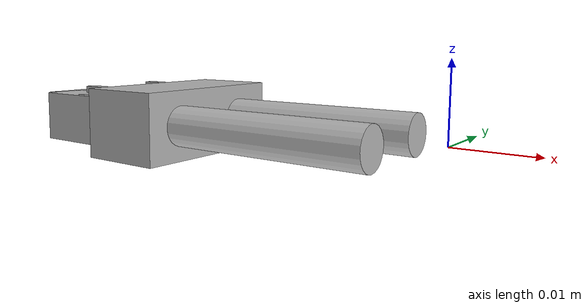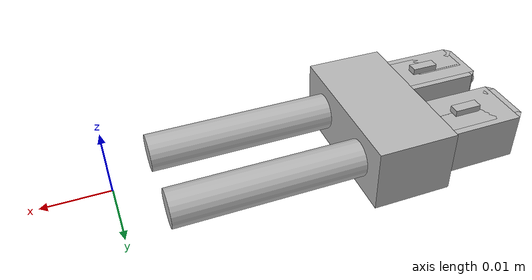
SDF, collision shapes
<?xml version="1.0" ?>
<sdf version="1.9">
  <model name="sfp_sc_cable_reversed_tip_only">
    <static>false</static>
    <self_collide>false</self_collide>

    <link name="cable_connection_0">
      <pose>2.363388573733971e-08 8.9916731726980004e-08 -1.809723890744408e-07 -1.963900419222713 -0.50606074442996496 0.41718859268790637</pose>
      <inertial>
        <mass>0.001</mass>
        <inertia>
          <ixx>1e-6</ixx>
          <iyy>1e-6</iyy>
          <izz>1e-6</izz>
        </inertia>
      </inertial>
    </link>

    <link name="cable_connection_1">
      <pose>0.030075539004938534 -0.4988568760994751 -0.15479201364706729 -2.1585642001188612 -0.87514742422539726 2.3400596200714205</pose>
      <inertial>
        <mass>0.001</mass>
        <inertia>
          <ixx>1e-6</ixx>
          <iyy>1e-6</iyy>
          <izz>1e-6</izz>
        </inertia>
      </inertial>
    </link>

    <include merge="true">
      <uri>model://SC Plug</uri>
      <pose relative_to="cable_connection_0">-0.052 0 0 0 0 3.14159</pose>
    </include>

    <joint name="plug_0_joint" type="fixed">
      <parent>cable_connection_0</parent>
      <child>sc_plug_link</child>
    </joint>
  </model>
</sdf>

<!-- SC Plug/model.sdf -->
<sdf version="1.9">
  <model name="SC Plug">
    <link name="sc_plug_link">
      <inertial auto="true">
        <mass>0.04</mass>
      </inertial>
      <visual name="sc_plug_visual">
        <geometry>
          <mesh>
            <uri>sc_plug_visual.glb</uri>
          </mesh>
        </geometry>
      </visual>
      <collision name="housing blue_predeterminado005_collider_box">
        <pose>0.002038 0.006344 4e-06 0.0 0.0 0.0</pose>
        <geometry>
          <box>
            <size>0.012721 0.009 0.0073</size>
          </box>
        </geometry>
      </collision>
      <collision name="housing blue_predeterminado005_collider_box.001">
        <pose>0.002038 -0.006344 4e-06 0.0 0.0 0.0</pose>
        <geometry>
          <box>
            <size>0.012721 0.009 0.0073</size>
          </box>
        </geometry>
      </collision>
      <collision name="housing blue_predeterminado005_collider_box.002">
        <pose>0.002539 0.006344 4e-06 0.0 0.0 0.0</pose>
        <geometry>
          <box>
            <size>0.013722 0.007 0.0073</size>
          </box>
        </geometry>
      </collision>
      <collision name="housing blue_predeterminado005_collider_box.003">
        <pose>0.002539 -0.006344 4e-06 0.0 0.0 0.0</pose>
        <geometry>
          <box>
            <size>0.013722 0.007 0.0073</size>
          </box>
        </geometry>
      </collision>
      <collision name="housing blue_predeterminado005_collider_box.004">
        <pose>0.008191 0.003056 4e-06 0.0 -0.0 -0.785398</pose>
        <geometry>
          <box>
            <size>0.002 0.00141 0.0073</size>
          </box>
        </geometry>
      </collision>
      <collision name="housing blue_predeterminado005_collider_box.005">
        <pose>0.008191 0.009636 4e-06 0.0 -0.0 0.785398</pose>
        <geometry>
          <box>
            <size>0.002 0.00141 0.0073</size>
          </box>
        </geometry>
      </collision>
      <collision name="housing blue_predeterminado005_collider_box.006">
        <pose>0.008191 -0.009636 4e-06 0.0 -0.0 -0.785398</pose>
        <geometry>
          <box>
            <size>0.002 0.00141 0.0073</size>
          </box>
        </geometry>
      </collision>
      <collision name="housing blue_predeterminado005_collider_box.007">
        <pose>0.008191 -0.003056 4e-06 0.0 -0.0 0.785398</pose>
        <geometry>
          <box>
            <size>0.002 0.00141 0.0073</size>
          </box>
        </geometry>
      </collision>
      <collision name="cube002_collider_box">
        <pose>-0.010291 0.0 0.0 0.0 0.0 0.0</pose>
        <geometry>
          <box>
            <size>0.01255 0.025 0.0101</size>
          </box>
        </geometry>
      </collision>
      <collision name="cylinder011_collider_cylinder">
        <pose>-0.031147 -0.00635 -0.0 -0.0 1.570796 0.0</pose>
        <geometry>
          <cylinder>
            <radius>0.0029</radius>
            <length>0.02921</length>
          </cylinder>
        </geometry>
      </collision>
      <collision name="cylinder005_collider_cylinder">
        <pose>-0.029953 0.00635 -0.0 -0.0 1.570796 0.0</pose>
        <geometry>
          <cylinder>
            <radius>0.0029</radius>
            <length>0.031598</length>
          </cylinder>
        </geometry>
      </collision>
      <collision name="ferula_predeterminado005_collider_cylinder">
        <pose>0.00465 -0.00635 0.0 -0.0 1.570796 0.0</pose>
        <geometry>
          <cylinder>
            <radius>0.00125</radius>
            <length>0.014</length>
          </cylinder>
        </geometry>
      </collision>
      <collision name="ferula_predeterminado003_collider_cylinder">
        <pose>0.00465 0.00635 0.0 -0.0 1.570796 0.0</pose>
        <geometry>
          <cylinder>
            <radius>0.00125</radius>
            <length>0.014</length>
          </cylinder>
        </geometry>
      </collision>
      <collision name="side_box_collision">
        <pose>0.00146 -0.00632 0.0042 0.0 0.0 0.0</pose>
        <geometry>
          <box>
            <size>0.00425 0.00162 0.001</size>
          </box>
        </geometry>
      </collision>
      <collision name="side_box_collision_2">
        <pose>0.00146 0.00632 0.0042 0.0 0.0 0.0</pose>
        <geometry>
          <box>
            <size>0.00425 0.00162 0.001</size>
          </box>
        </geometry>
      </collision>
    </link>

    <link name="sc_tip_link">
      <pose>0.01165 0 0 -1.5708 0 -1.5708</pose>
      <inertial>
        <mass>1e-3</mass>
        <inertia>
          <ixx>1e-6</ixx>
          <iyy>1e-6</iyy>
          <izz>1e-6</izz>
        </inertia>
      </inertial>
    </link>

    <joint name="sc_tip_joint" type="fixed">
      <parent>sc_plug_link</parent>
      <child>sc_tip_link</child>
    </joint>

  </model>
</sdf>
